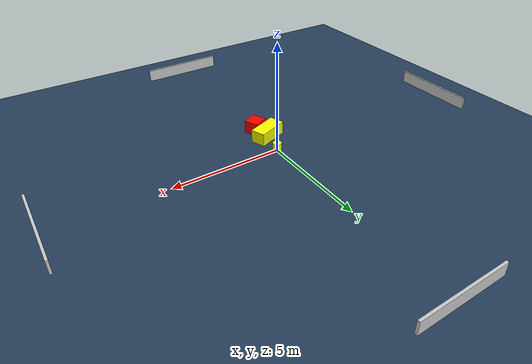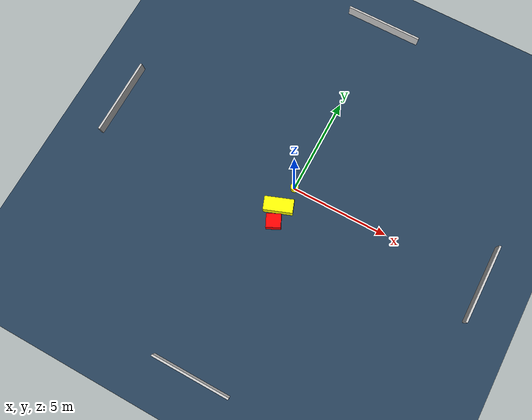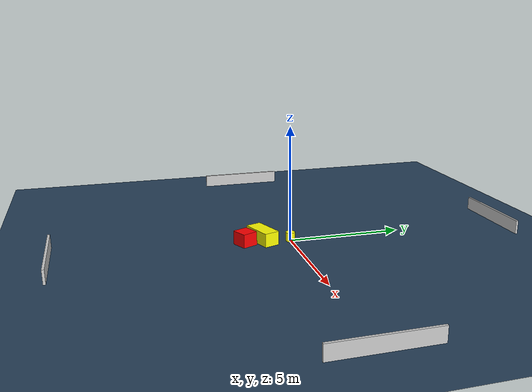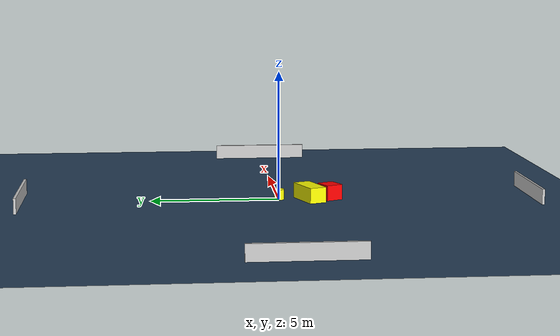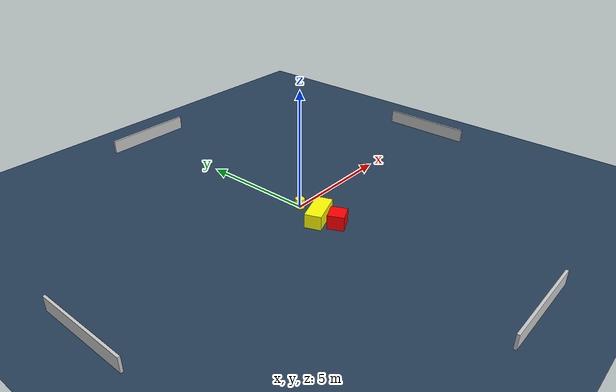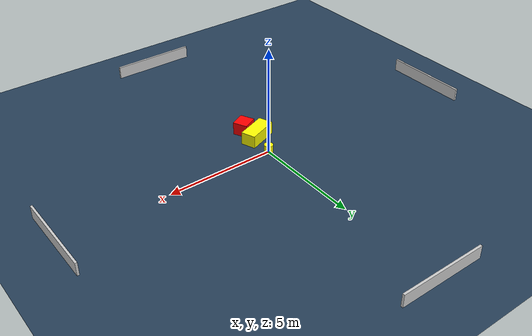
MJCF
<?xml version="1.0" ?>
<mujoco model="generated_environment">
  <option timestep="0.01" integrator="RK4" cone="elliptic"/>
  <default>
    <geom density="1"/>
  </default>
  <asset>
    <texture builtin="gradient" height="3072" name="skybox" rgb1="0.3 0.5 0.7" rgb2="0 0 0" type="skybox" width="512"/>
    <texture builtin="checker" height="300" name="groundplane" rgb1="0.2 0.3 0.4" rgb2="0.1 0.2 0.3" type="2d" width="300"/>
    <material name="groundplane" reflectance="0.2" texrepeat="5 5" texture="groundplane"/>
  </asset>
  <worldbody>
    <light dir="0 0 -1" directional="true" pos="0 0 1.5"/>
    <geom condim="3" friction="0.5 0.005 0.001" material="groundplane" name="floor" pos="0 0 0" size="0 0 0.05" type="plane"/>
    <body name="walls">
      <geom name="wall_1" condim="4" pos="-10.0 0.0 0.3" rgba="0.800000011920929 0.800000011920929 0.800000011920929 1.0" size="0.05 2.0 0.3" type="box"/>
      <geom name="wall_2" condim="4" pos="10.0 0.0 0.3" rgba="0.800000011920929 0.800000011920929 0.800000011920929 1.0" size="0.05 2.0 0.3" type="box"/>
      <geom name="wall_3" condim="4" pos="0.0 -10.0 0.3" rgba="0.800000011920929 0.800000011920929 0.800000011920929 1.0" size="2.0 0.05 0.3" type="box"/>
      <geom name="wall_4" condim="4" pos="0.0 10.0 0.3" rgba="0.800000011920929 0.800000011920929 0.800000011920929 1.0" size="2.0 0.05 0.3" type="box"/>
    </body>
    <body name="robot">
      <joint name="joint_x" type="slide" pos="0 0 0" axis="1 0 0"/>
      <joint name="joint_y" type="slide" pos="0 0 0" axis="0 1 0"/>
      <geom name="robot" type="cylinder" pos="0.0 0.0 0.2" size="0.2 0.2 0.0" mass="5.0" friction="1.0 0.005 0.0001" condim="4" rgba="1.0 1.0 0.0 1.0"/>
    </body>
    <body name="obstacle_1_movable">
      <geom name="obstacle_1_movable" condim="4" pos="-0.24714357306310242 -1.1828268826311323 0.3" euler="0 0 290.18640401387125" friction="0.0 0.005 0.001" rgba="1.0 1.0 0.0 1.0" size="0.34277196746419036 0.728882166920686 0.3" type="box" mass="0.1"/>
      <joint type="free"/>
    </body>
    <body name="obstacle_2_static">
      <geom name="obstacle_2_static" condim="4" pos="-0.0897740957688195 -1.9867229643005961 0.3" euler="0 0 115.34417020763503" friction="0.0 0.005 0.001" rgba="1.0 0.0 0.0 1.0" size="0.3413978139965894 0.36517615225692024 0.3" type="box"/>
    </body>
  </worldbody>
  <actuator>
    <motor name="actuator_x" joint="joint_x" gear="1" ctrlrange="-1 1"/>
    <motor name="actuator_y" joint="joint_y" gear="1" ctrlrange="-1 1"/>
  </actuator>
</mujoco>
